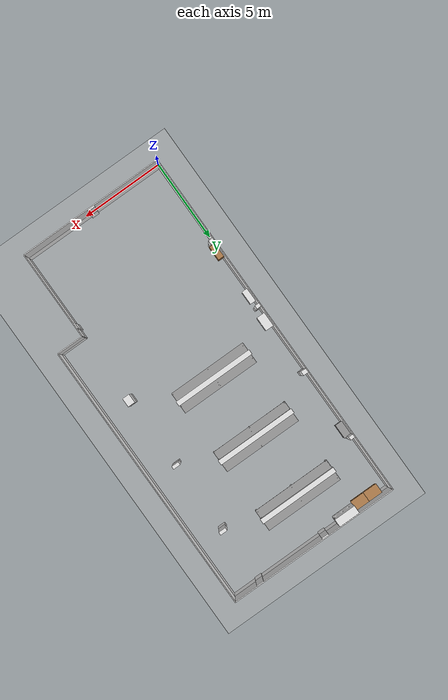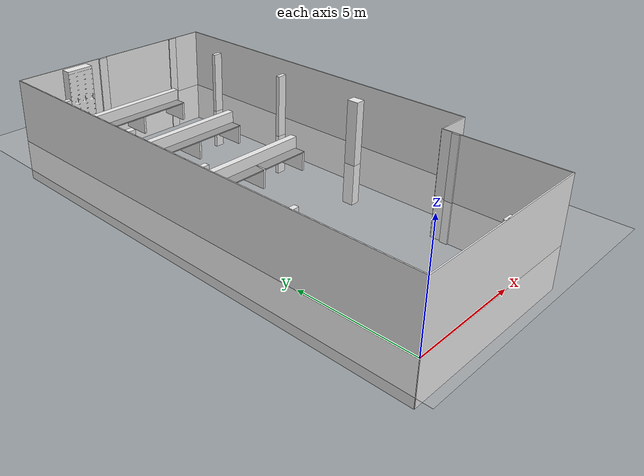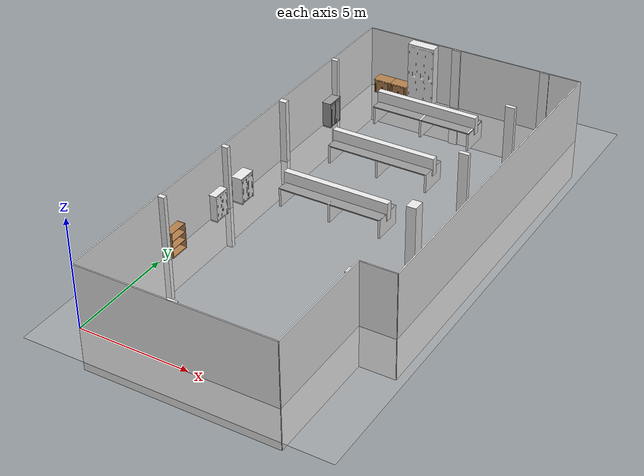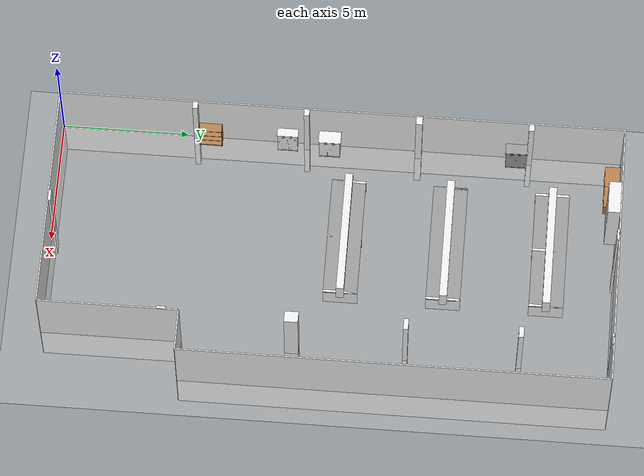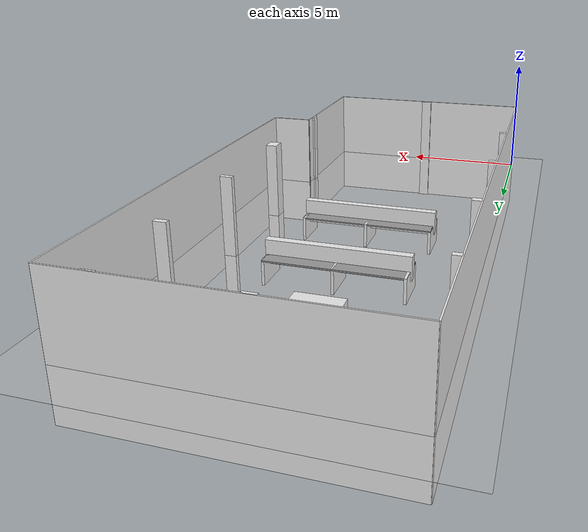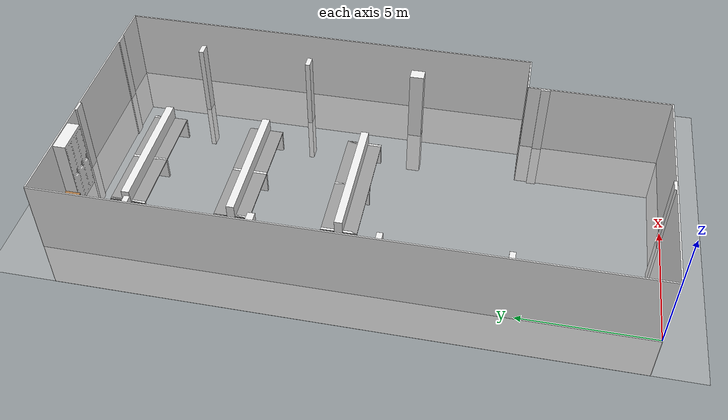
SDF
<?xml version="1.0"?>

<sdf version="1.5">
        <world name="default">
                <!-- physics engine {-->
                <physics name="default_physics" default="0" type="ode">
                        <gravity>0 0 -9.8066</gravity>
                        <ode>
                                <solver>
                                        <type>quick</type>
                                        <iters>10</iters>
                                        <sor>1.3</sor>
                                        <use_dynamic_moi_rescaling>0</use_dynamic_moi_rescaling>
                                </solver>
                                <constraints>
                                        <cfm>0</cfm>
                                        <erp>0.2</erp>
                                        <contact_max_correcting_vel>1000</contact_max_correcting_vel>
                                        <contact_surface_layer>0.001</contact_surface_layer>
                                </constraints>
                        </ode>
                        <max_step_size>0.004</max_step_size>
                        <real_time_factor>1</real_time_factor>
                        <real_time_update_rate>250</real_time_update_rate>
                        <magnetic_field>6.0e-06 2.3e-05 -4.2e-05</magnetic_field>
                </physics>

                <GUI name="default_gri" default="0" type="ode">
                        <grid> 45 1.0 0 0.0150</grid>
                </GUI>

                <!-- setup shadows {-->
                <scene>
                        <shadows>true</shadows>
                        <sky>
                                <clouds />
                        </sky>
                </scene>

                <!-- sun {-->

                <light name='sun' type='directional'>
                        <pose frame=''>0 0 10000 0.4 0.2 0</pose>
                        <diffuse>1 1 1 1</diffuse>
                        <specular>0.6 0.6 0.6 1</specular>
                        <direction>0.1 0.1 -0.9</direction>
                        <attenuation>
                                <range>20</range>
                                <constant>0.5</constant>
                                <linear>0.01</linear>
                                <quadratic>0.001</quadratic>
                        </attenuation>
                        <cast_shadows>1</cast_shadows>
                </light>
                <!-- A ground plane e robo-->
                <include>
                        <uri>model://ground_plane</uri>
                </include>

                <!-- todas as paredes -->
                <model name="wall">
                        <include>
                                <uri> model://wall-laser</uri>
                        </include>
                </model>

                <!-- Todas as colunas -->
                <model name="columns">
                        <include>
                                <uri> model://columns-laser</uri>
                        </include>
                </model>

                <!-- Todas as bancadas -->
                <model name="labBenchs">
                        <include>
                                <uri> model://labBench-laser</uri>
                        </include>
                </model>

                <!-- porta -->

                <!-- QR code -->

                <!--Armarios-->
                <model name="obj1">
                        <include>
                                <uri> model://bookshelf</uri>
                                <pose> 0 5.927 0 0 0 1.5707 </pose>
                        </include>
                </model>

                <model name="obj2">
                        <include>
                                <uri> model://cupboards</uri>

                        </include>
                </model>

        </world>
</sdf>

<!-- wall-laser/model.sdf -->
<sdf version="1.5">
    <model name="walls">
        <static>true</static>

        <link name="wall_900_hori">
            <pose>4.5 0 0.5 0 0 1.5707</pose>
            <static>true</static>
            <inertial>
                <mass>1.0</mass>
                <inertia>
                    <!-- inertias are tricky to compute -->
                    <ixx>1</ixx> <!-- for a box: ixx = 0.083 * mass * (y*y + z*z) -->
                    <ixy>0</ixy> <!-- for a box: ixy = 0 -->
                    <ixz>0</ixz> <!-- for a box: ixz = 0 -->
                    <iyy>1</iyy> <!-- for a box: iyy = 0.083 * mass * (x*x + z*z) -->
                    <iyz>0</iyz> <!-- for a box: iyz = 0 -->
                    <izz>1</izz> <!-- for a box: izz = 0.083 * mass * (x*x + y*y) -->
                </inertia>
            </inertial>
            <collision name="collision">
                <geometry>
                    <box>
                        <size>0.05 9 5</size>
                    </box>
                </geometry>
            </collision>
            <visual name="visual">
                <geometry>
                    <box>
                        <size>0.05 9 5</size>
                    </box>
                </geometry>
                <material>
                    <script>
                        <uri>file://usr/share/gazebo-11/media/materials/scripts/gazebo.material</uri>
                        <name>Gazebo/White</name>
                    </script>
                </material>
            </visual>
        </link>

        <link name="wall_550_verti">
            <pose>9 2.75 0.5 0 0 0</pose>
            <static>true</static>
            <inertial>
                <mass>1.0</mass>
                <inertia>
                    <!-- inertias are tricky to compute -->
                    <ixx>1</ixx> <!-- for a box: ixx = 0.083 * mass * (y*y + z*z) -->
                    <ixy>0</ixy> <!-- for a box: ixy = 0 -->
                    <ixz>0</ixz> <!-- for a box: ixz = 0 -->
                    <iyy>1</iyy> <!-- for a box: iyy = 0.083 * mass * (x*x + z*z) -->
                    <iyz>0</iyz> <!-- for a box: iyz = 0 -->
                    <izz>1</izz> <!-- for a box: izz = 0.083 * mass * (x*x + y*y) -->
                </inertia>
            </inertial>
            <collision name="collision">
                <geometry>
                    <box>
                        <size>0.05 5.5 5</size>
                    </box>
                </geometry>
            </collision>
            <visual name="visual">
                <geometry>
                    <box>
                        <size>0.05 5.5 5</size>
                    </box>
                </geometry>
                <material>
                    <script>
                        <uri>file://usr/share/gazebo-11/media/materials/scripts/gazebo.material</uri>
                        <name>Gazebo/White</name>
                    </script>
                </material>
            </visual>
        </link>

        <link name="wall_164_hori">
            <pose>9.8225 5.5 0.5 0 0 1.5707</pose>
            <static>true</static>
            <inertial>
                <mass>1.0</mass>
                <inertia>
                    <!-- inertias are tricky to compute -->
                    <ixx>1</ixx> <!-- for a box: ixx = 0.083 * mass * (y*y + z*z) -->
                    <ixy>0</ixy> <!-- for a box: ixy = 0 -->
                    <ixz>0</ixz> <!-- for a box: ixz = 0 -->
                    <iyy>1</iyy> <!-- for a box: iyy = 0.083 * mass * (x*x + z*z) -->
                    <iyz>0</iyz> <!-- for a box: iyz = 0 -->
                    <izz>1</izz> <!-- for a box: izz = 0.083 * mass * (x*x + y*y) -->
                </inertia>
            </inertial>
            <collision name="collision">
                <geometry>
                    <box>
                        <size>0.05 1.645 5</size>
                    </box>
                </geometry>
            </collision>
            <visual name="visual">
                <geometry>
                    <box>
                        <size>0.05 1.645 5</size>
                    </box>
                </geometry>
                <material>
                    <script>
                        <uri>file://usr/share/gazebo-11/media/materials/scripts/gazebo.material</uri>
                        <name>Gazebo/White</name>
                    </script>
                </material>
            </visual>
        </link>

        <link name="wall_1678_verti">
            <pose>10.645 13.8925 0.5 0 0 0</pose>
            <static>true</static>
            <inertial>
                <mass>1.0</mass>
                <inertia>
                    <!-- inertias are tricky to compute -->
                    <ixx>1</ixx> <!-- for a box: ixx = 0.083 * mass * (y*y + z*z) -->
                    <ixy>0</ixy> <!-- for a box: ixy = 0 -->
                    <ixz>0</ixz> <!-- for a box: ixz = 0 -->
                    <iyy>1</iyy> <!-- for a box: iyy = 0.083 * mass * (x*x + z*z) -->
                    <iyz>0</iyz> <!-- for a box: iyz = 0 -->
                    <izz>1</izz> <!-- for a box: izz = 0.083 * mass * (x*x + y*y) -->
                </inertia>
            </inertial>
            <collision name="collision">
                <geometry>
                    <box>
                        <size>0.05 16.785 5</size>
                    </box>
                </geometry>
            </collision>
            <visual name="visual">
                <geometry>
                    <box>
                        <size>0.05 16.785 5</size>
                    </box>
                </geometry>
                <material>
                    <script>
                        <uri>file://usr/share/gazebo-11/media/materials/scripts/gazebo.material</uri>
                        <name>Gazebo/White</name>
                    </script>
                </material>
            </visual>
        </link>

        <link name="wall_1064_hori">
            <pose>5.3225 22.285 0.5 0 0 1.5707</pose>
            <static>true</static>
            <inertial>
                <mass>1.0</mass>
                <inertia>
                    <!-- inertias are tricky to compute -->
                    <ixx>1</ixx> <!-- for a box: ixx = 0.083 * mass * (y*y + z*z) -->
                    <ixy>0</ixy> <!-- for a box: ixy = 0 -->
                    <ixz>0</ixz> <!-- for a box: ixz = 0 -->
                    <iyy>1</iyy> <!-- for a box: iyy = 0.083 * mass * (x*x + z*z) -->
                    <iyz>0</iyz> <!-- for a box: iyz = 0 -->
                    <izz>1</izz> <!-- for a box: izz = 0.083 * mass * (x*x + y*y) -->
                </inertia>
            </inertial>
            <collision name="collision">
                <geometry>
                    <box>
                        <size>0.05 10.645 5</size>
                    </box>
                </geometry>
            </collision>
            <visual name="visual">
                <geometry>
                    <box>
                        <size>0.05 10.645 5</size>
                    </box>
                </geometry>
                <material>
                    <script>
                        <uri>file://usr/share/gazebo-11/media/materials/scripts/gazebo.material</uri>
                        <name>Gazebo/White</name>
                    </script>
                </material>
            </visual>
        </link>

        <link name="wall_2228_verti">
            <pose>0 11.1425 0.5 0 0 0</pose>
            <static>true</static>
            <inertial>
                <mass>1.0</mass>
                <inertia>
                    <!-- inertias are tricky to compute -->
                    <ixx>1</ixx> <!-- for a box: ixx = 0.083 * mass * (y*y + z*z) -->
                    <ixy>0</ixy> <!-- for a box: ixy = 0 -->
                    <ixz>0</ixz> <!-- for a box: ixz = 0 -->
                    <iyy>1</iyy> <!-- for a box: iyy = 0.083 * mass * (x*x + z*z) -->
                    <iyz>0</iyz> <!-- for a box: iyz = 0 -->
                    <izz>1</izz> <!-- for a box: izz = 0.083 * mass * (x*x + y*y) -->
                </inertia>
            </inertial>
            <collision name="collision">
                <geometry>
                    <box>
                        <size>0.05 22.285 5</size>
                    </box>
                </geometry>
            </collision>
            <visual name="visual">
                <geometry>
                    <box>
                        <size>0.05 22.285 5</size>
                    </box>
                </geometry>
                <material>
                    <script>
                        <uri>file://usr/share/gazebo-11/media/materials/scripts/gazebo.material</uri>
                        <name>Gazebo/White</name>
                    </script>
                </material>
            </visual>
        </link>

    </model>
</sdf>

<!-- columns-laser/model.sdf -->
<sdf version="1.5">
    <model name="columns">
        <static>true</static>

        <link name="column_1_hori">
            <pose>4.5 0.055 0.5 0 0 1.5707</pose>
            <static>true</static>
            <inertial>
                <mass>1.0</mass>
                <inertia>
                    <!-- inertias are tricky to compute -->
                    <ixx>1</ixx> <!-- for a box: ixx = 0.083 * mass * (y*y + z*z) -->
                    <ixy>0</ixy> <!-- for a box: ixy = 0 -->
                    <ixz>0</ixz> <!-- for a box: ixz = 0 -->
                    <iyy>1</iyy> <!-- for a box: iyy = 0.083 * mass * (x*x + z*z) -->
                    <iyz>0</iyz> <!-- for a box: iyz = 0 -->
                    <izz>1</izz> <!-- for a box: izz = 0.083 * mass * (x*x + y*y) -->
                </inertia>
            </inertial>
            <collision name="collision">
                <geometry>
                    <box>
                        <size>0.11 0.45 5</size>
                    </box>
                </geometry>
            </collision>
            <visual name="visual">
                <geometry>
                    <box>
                        <size>0.11 0.45 5</size>
                    </box>
                </geometry>
                <material>
                    <script>
                        <uri>file://usr/share/gazebo-11/media/materials/scripts/gazebo.material</uri>
                        <name>Gazebo/White</name>
                    </script>
                </material>
            </visual>
        </link>

        <link name="column_2_verti">
            <pose>8.95 4.82 0.5 0 0 0</pose> <!-- corrigir posicao y -->
            <static>true</static>
            <inertial>
                <mass>1.0</mass>
                <inertia>
                    <!-- inertias are tricky to compute -->
                    <ixx>1</ixx> <!-- for a box: ixx = 0.083 * mass * (y*y + z*z) -->
                    <ixy>0</ixy> <!-- for a box: ixy = 0 -->
                    <ixz>0</ixz> <!-- for a box: ixz = 0 -->
                    <iyy>1</iyy> <!-- for a box: iyy = 0.083 * mass * (x*x + z*z) -->
                    <iyz>0</iyz> <!-- for a box: iyz = 0 -->
                    <izz>1</izz> <!-- for a box: izz = 0.083 * mass * (x*x + y*y) -->
                </inertia>
            </inertial>
            <collision name="collision">
                <geometry>
                    <box>
                        <size>0.1 0.36 5</size>
                    </box>
                </geometry>
            </collision>
            <visual name="visual">
                <geometry>
                    <box>
                        <size>0.1 0.36 5</size>
                    </box>
                </geometry>
                <material>
                    <script>
                        <uri>file://usr/share/gazebo-11/media/materials/scripts/gazebo.material</uri>
                        <name>Gazebo/White</name>
                    </script>
                </material>
            </visual>
        </link>

        <link name="column_3_hori">
            <pose>8.9425 22.25 0.5 0 0 1.5707</pose>
            <static>true</static>
            <inertial>
                <mass>1.0</mass>
                <inertia>
                    <!-- inertias are tricky to compute -->
                    <ixx>1</ixx> <!-- for a box: ixx = 0.083 * mass * (y*y + z*z) -->
                    <ixy>0</ixy> <!-- for a box: ixy = 0 -->
                    <ixz>0</ixz> <!-- for a box: ixz = 0 -->
                    <iyy>1</iyy> <!-- for a box: iyy = 0.083 * mass * (x*x + z*z) -->
                    <iyz>0</iyz> <!-- for a box: iyz = 0 -->
                    <izz>1</izz> <!-- for a box: izz = 0.083 * mass * (x*x + y*y) -->
                </inertia>
            </inertial>
            <collision name="collision">
                <geometry>
                    <box>
                        <size>0.07 0.445 5</size>
                    </box>
                </geometry>
            </collision>
            <visual name="visual">
                <geometry>
                    <box>
                        <size>0.07 0.445 5</size>
                    </box>
                </geometry>
                <material>
                    <script>
                        <uri>file://usr/share/gazebo-11/media/materials/scripts/gazebo.material</uri>
                        <name>Gazebo/White</name>
                    </script>
                </material>
            </visual>
        </link>

        <link name="column_4_hori">
            <pose>4.5225 22.235 0.5 0 0 1.5707</pose>
            <static>true</static>
            <inertial>
                <mass>1.0</mass>
                <inertia>
                    <!-- inertias are tricky to compute -->
                    <ixx>1</ixx> <!-- for a box: ixx = 0.083 * mass * (y*y + z*z) -->
                    <ixy>0</ixy> <!-- for a box: ixy = 0 -->
                    <ixz>0</ixz> <!-- for a box: ixz = 0 -->
                    <iyy>1</iyy> <!-- for a box: iyy = 0.083 * mass * (x*x + z*z) -->
                    <iyz>0</iyz> <!-- for a box: iyz = 0 -->
                    <izz>1</izz> <!-- for a box: izz = 0.083 * mass * (x*x + y*y) -->
                </inertia>
            </inertial>
            <collision name="collision">
                <geometry>
                    <box>
                        <size>0.1 0.435 5</size>
                    </box>
                </geometry>
            </collision>
            <visual name="visual">
                <geometry>
                    <box>
                        <size>0.1 0.435 5</size>
                    </box>
                </geometry>
                <material>
                    <script>
                        <uri>file://usr/share/gazebo-11/media/materials/scripts/gazebo.material</uri>
                        <name>Gazebo/White</name>
                    </script>
                </material>
            </visual>
        </link>

        <link name="column_8_verti">
            <pose>0.15 5.3645 0.5 0 0 0</pose>
            <static>true</static>
            <inertial>
                <mass>1.0</mass>
                <inertia>
                    <!-- inertias are tricky to compute -->
                    <ixx>1</ixx> <!-- for a box: ixx = 0.083 * mass * (y*y + z*z) -->
                    <ixy>0</ixy> <!-- for a box: ixy = 0 -->
                    <ixz>0</ixz> <!-- for a box: ixz = 0 -->
                    <iyy>1</iyy> <!-- for a box: iyy = 0.083 * mass * (x*x + z*z) -->
                    <iyz>0</iyz> <!-- for a box: iyz = 0 -->
                    <izz>1</izz> <!-- for a box: izz = 0.083 * mass * (x*x + y*y) -->
                </inertia>
            </inertial>
            <collision name="collision">
                <geometry>
                    <box>
                        <size>0.3 0.205 5</size>
                    </box>
                </geometry>
            </collision>
            <visual name="visual">
                <geometry>
                    <box>
                        <size>0.3 0.205 5</size>
                    </box>
                </geometry>
                <material>
                    <script>
                        <uri>file://usr/share/gazebo-11/media/materials/scripts/gazebo.material</uri>
                        <name>Gazebo/White</name>
                    </script>
                </material>
            </visual>
        </link>

        <link name="column_7_verti">
            <pose>0.15 9.764 0.5 0 0 0</pose>
            <static>true</static>
            <inertial>
                <mass>1.0</mass>
                <inertia>
                    <!-- inertias are tricky to compute -->
                    <ixx>1</ixx> <!-- for a box: ixx = 0.083 * mass * (y*y + z*z) -->
                    <ixy>0</ixy> <!-- for a box: ixy = 0 -->
                    <ixz>0</ixz> <!-- for a box: ixz = 0 -->
                    <iyy>1</iyy> <!-- for a box: iyy = 0.083 * mass * (x*x + z*z) -->
                    <iyz>0</iyz> <!-- for a box: iyz = 0 -->
                    <izz>1</izz> <!-- for a box: izz = 0.083 * mass * (x*x + y*y) -->
                </inertia>
            </inertial>
            <collision name="collision">
                <geometry>
                    <box>
                        <size>0.3 0.21 5</size>
                    </box>
                </geometry>
            </collision>
            <visual name="visual">
                <geometry>
                    <box>
                        <size>0.3 0.21 5</size>
                    </box>
                </geometry>
                <material>
                    <script>
                        <uri>file://usr/share/gazebo-11/media/materials/scripts/gazebo.material</uri>
                        <name>Gazebo/White</name>
                    </script>
                </material>
            </visual>
        </link>

        <link name="column_6_verti">
            <pose>0.175 14.202 0.5 0 0 0</pose>
            <static>true</static>
            <inertial>
                <mass>1.0</mass>
                <inertia>
                    <!-- inertias are tricky to compute -->
                    <ixx>1</ixx> <!-- for a box: ixx = 0.083 * mass * (y*y + z*z) -->
                    <ixy>0</ixy> <!-- for a box: ixy = 0 -->
                    <ixz>0</ixz> <!-- for a box: ixz = 0 -->
                    <iyy>1</iyy> <!-- for a box: iyy = 0.083 * mass * (x*x + z*z) -->
                    <iyz>0</iyz> <!-- for a box: iyz = 0 -->
                    <izz>1</izz> <!-- for a box: izz = 0.083 * mass * (x*x + y*y) -->
                </inertia>
            </inertial>
            <collision name="collision">
                <geometry>
                    <box>
                        <size>0.35 0.26 5</size>
                    </box>
                </geometry>
            </collision>
            <visual name="visual">
                <geometry>
                    <box>
                        <size>0.35 0.26 5</size>
                    </box>
                </geometry>
                <material>
                    <script>
                        <uri>file://usr/share/gazebo-11/media/materials/scripts/gazebo.material</uri>
                        <name>Gazebo/White</name>
                    </script>
                </material>
            </visual>
        </link>

        <link name="column_5_verti">
            <pose>0.1525 18.6245 0.5 0 0 0</pose>
            <static>true</static>
            <inertial>
                <mass>1.0</mass>
                <inertia>
                    <!-- inertias are tricky to compute -->
                    <ixx>1</ixx> <!-- for a box: ixx = 0.083 * mass * (y*y + z*z) -->
                    <ixy>0</ixy> <!-- for a box: ixy = 0 -->
                    <ixz>0</ixz> <!-- for a box: ixz = 0 -->
                    <iyy>1</iyy> <!-- for a box: iyy = 0.083 * mass * (x*x + z*z) -->
                    <iyz>0</iyz> <!-- for a box: iyz = 0 -->
                    <izz>1</izz> <!-- for a box: izz = 0.083 * mass * (x*x + y*y) -->
                </inertia>
            </inertial>
            <collision name="collision">
                <geometry>
                    <box>
                        <size>0.305 0.205 5</size>
                    </box>
                </geometry>
            </collision>
            <visual name="visual">
                <geometry>
                    <box>
                        <size>0.305 0.205 5</size>
                    </box>
                </geometry>
                <material>
                    <script>
                        <uri>file://usr/share/gazebo-11/media/materials/scripts/gazebo.material</uri>
                        <name>Gazebo/White</name>
                    </script>
                </material>
            </visual>
        </link>

        <link name="obj8">
            <pose>8.936 18.72 0.5 0 0 0</pose>
            <static>true</static>
            <inertial>
                <mass>1.0</mass>
                <inertia>
                    <!-- inertias are tricky to compute -->
                    <ixx>1</ixx> <!-- for a box: ixx = 0.083 * mass * (y*y + z*z) -->
                    <ixy>0</ixy> <!-- for a box: ixy = 0 -->
                    <ixz>0</ixz> <!-- for a box: ixz = 0 -->
                    <iyy>1</iyy> <!-- for a box: iyy = 0.083 * mass * (x*x + z*z) -->
                    <iyz>0</iyz> <!-- for a box: iyz = 0 -->
                    <izz>1</izz> <!-- for a box: izz = 0.083 * mass * (x*x + y*y) -->
                </inertia>
            </inertial>
            <collision name="collision">
                <geometry>
                    <box>
                        <size>0.45 0.19 5</size>
                    </box>
                </geometry>
            </collision>
            <visual name="visual">
                <geometry>
                    <box>
                        <size>0.45 0.19 5</size>
                    </box>
                </geometry>
                <material>
                    <script>
                        <uri>file://usr/share/gazebo-11/media/materials/scripts/gazebo.material</uri>
                        <name>Gazebo/White</name>
                    </script>
                </material>
            </visual>
        </link>

        <link name="obj9">
            <pose>8.936 14.275 0.5 0 0 0</pose>
            <static>true</static>
            <inertial>
                <mass>1.0</mass>
                <inertia>
                    <!-- inertias are tricky to compute -->
                    <ixx>1</ixx> <!-- for a box: ixx = 0.083 * mass * (y*y + z*z) -->
                    <ixy>0</ixy> <!-- for a box: ixy = 0 -->
                    <ixz>0</ixz> <!-- for a box: ixz = 0 -->
                    <iyy>1</iyy> <!-- for a box: iyy = 0.083 * mass * (x*x + z*z) -->
                    <iyz>0</iyz> <!-- for a box: iyz = 0 -->
                    <izz>1</izz> <!-- for a box: izz = 0.083 * mass * (x*x + y*y) -->
                </inertia>
            </inertial>
            <collision name="collision">
                <geometry>
                    <box>
                        <size>0.45 0.19 5</size>
                    </box>
                </geometry>
            </collision>
            <visual name="visual">
                <geometry>
                    <box>
                        <size>0.45 0.19 5</size>
                    </box>
                </geometry>
                <material>
                    <script>
                        <uri>file://usr/share/gazebo-11/media/materials/scripts/gazebo.material</uri>
                        <name>Gazebo/White</name>
                    </script>
                </material>
            </visual>
        </link>

        <link name="obj10">
            <pose>8.9695 9.8545 0.5 0 0 0</pose>
            <static>true</static>
            <inertial>
                <mass>1.0</mass>
                <inertia>
                    <!-- inertias are tricky to compute -->
                    <ixx>1</ixx> <!-- for a box: ixx = 0.083 * mass * (y*y + z*z) -->
                    <ixy>0</ixy> <!-- for a box: ixy = 0 -->
                    <ixz>0</ixz> <!-- for a box: ixz = 0 -->
                    <iyy>1</iyy> <!-- for a box: iyy = 0.083 * mass * (x*x + z*z) -->
                    <iyz>0</iyz> <!-- for a box: iyz = 0 -->
                    <izz>1</izz> <!-- for a box: izz = 0.083 * mass * (x*x + y*y) -->
                </inertia>
            </inertial>
            <collision name="collision">
                <geometry>
                    <box>
                        <size>0.445 0.545 5</size>
                    </box>
                </geometry>
            </collision>
            <visual name="visual">
                <geometry>
                    <box>
                        <size>0.445 0.545 5</size>
                    </box>
                </geometry>
                <material>
                    <script>
                        <uri>file://usr/share/gazebo-11/media/materials/scripts/gazebo.material</uri>
                        <name>Gazebo/White</name>
                    </script>
                </material>
            </visual>
        </link>
    </model>
</sdf>

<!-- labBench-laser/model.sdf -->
<sdf version="1.5">
    <model name="benchs">
        <static>true</static>

        <!-- obj12.1 -->
        <link name="white_hori_1">
            <pose>4.423 19.633 1 0 0 0</pose>
            <static>true</static>
            <inertial>
                <mass>1.0</mass>
                <inertia>
                    <!-- inertias are tricky to compute -->
                    <ixx>1</ixx> <!-- for a box: ixx = 0.083 * mass * (y*y + z*z) -->
                    <ixy>0</ixy> <!-- for a box: ixy = 0 -->
                    <ixz>0</ixz> <!-- for a box: ixz = 0 -->
                    <iyy>1</iyy> <!-- for a box: iyy = 0.083 * mass * (x*x + z*z) -->
                    <iyz>0</iyz> <!-- for a box: iyz = 0 -->
                    <izz>1</izz> <!-- for a box: izz = 0.083 * mass * (x*x + y*y) -->
                </inertia>
            </inertial>
            <collision name="collision">
                <geometry>
                    <box>
                        <size>5 0.3 0.85</size>
                    </box>
                </geometry>
            </collision>
            <visual name="visual">
                <geometry>
                    <box>
                        <size>5 0.3 0.85</size>
                    </box>
                </geometry>
                <material>
                    <script>
                        <uri>file://usr/share/gazebo-11/media/materials/scripts/gazebo.material</uri>
                        <name>Gazebo/White</name>
                    </script>
                </material>
            </visual>
        </link>

        <link name="grani_hori_1">
            <pose>4.423 19.633 0.875 0 0 0</pose>
            <static>true</static>
            <inertial>
                <mass>1.0</mass>
                <inertia>
                    <!-- inertias are tricky to compute -->
                    <ixx>1</ixx> <!-- for a box: ixx = 0.083 * mass * (y*y + z*z) -->
                    <ixy>0</ixy> <!-- for a box: ixy = 0 -->
                    <ixz>0</ixz> <!-- for a box: ixz = 0 -->
                    <iyy>1</iyy> <!-- for a box: iyy = 0.083 * mass * (x*x + z*z) -->
                    <iyz>0</iyz> <!-- for a box: iyz = 0 -->
                    <izz>1</izz> <!-- for a box: izz = 0.083 * mass * (x*x + y*y) -->
                </inertia>
            </inertial>
            <collision name="collision">
                <geometry>
                    <box>
                        <size>4.9 1.35 0.05</size>
                    </box>
                </geometry>
            </collision>
            <visual name="visual">
                <geometry>
                    <box>
                        <size>4.9 1.35 0.05</size>
                    </box>
                </geometry>
                <material>
                    <script>
                        <uri>file://usr/share/gazebo-11/media/materials/scripts/gazebo.material</uri>
                        <name>Gazebo/Grey</name>
                    </script>
                </material>
            </visual>
        </link>

        <link name="white_verti_1">
            <pose>2.023 19.633 0.45 0 0 0</pose>
            <static>true</static>
            <inertial>
                <mass>1.0</mass>
                <inertia>
                    <!-- inertias are tricky to compute -->
                    <ixx>1</ixx> <!-- for a box: ixx = 0.083 * mass * (y*y + z*z) -->
                    <ixy>0</ixy> <!-- for a box: ixy = 0 -->
                    <ixz>0</ixz> <!-- for a box: ixz = 0 -->
                    <iyy>1</iyy> <!-- for a box: iyy = 0.083 * mass * (x*x + z*z) -->
                    <iyz>0</iyz> <!-- for a box: iyz = 0 -->
                    <izz>1</izz> <!-- for a box: izz = 0.083 * mass * (x*x + y*y) -->
                </inertia>
            </inertial>
            <collision name="collision">
                <geometry>
                    <box>
                        <size>0.1 1.35 0.9</size>
                    </box>
                </geometry>
            </collision>
            <visual name="visual">
                <geometry>
                    <box>
                        <size>0.1 1.35 0.9</size>
                    </box>
                </geometry>
                <material>
                    <script>
                        <uri>file://usr/share/gazebo-11/media/materials/scripts/gazebo.material</uri>
                        <name>Gazebo/White</name>
                    </script>
                </material>
            </visual>
        </link>

        <link name="white_verti_2">
            <pose>4.423 19.633 0.45 0 0 0</pose>
            <static>true</static>
            <inertial>
                <mass>1.0</mass>
                <inertia>
                    <!-- inertias are tricky to compute -->
                    <ixx>1</ixx> <!-- for a box: ixx = 0.083 * mass * (y*y + z*z) -->
                    <ixy>0</ixy> <!-- for a box: ixy = 0 -->
                    <ixz>0</ixz> <!-- for a box: ixz = 0 -->
                    <iyy>1</iyy> <!-- for a box: iyy = 0.083 * mass * (x*x + z*z) -->
                    <iyz>0</iyz> <!-- for a box: iyz = 0 -->
                    <izz>1</izz> <!-- for a box: izz = 0.083 * mass * (x*x + y*y) -->
                </inertia>
            </inertial>
            <collision name="collision">
                <geometry>
                    <box>
                        <size>0.1 1.35 0.9</size>
                    </box>
                </geometry>
            </collision>
            <visual name="visual">
                <geometry>
                    <box>
                        <size>0.1 1.35 0.9</size>
                    </box>
                </geometry>
                <material>
                    <script>
                        <uri>file://usr/share/gazebo-11/media/materials/scripts/gazebo.material</uri>
                        <name>Gazebo/White</name>
                    </script>
                </material>
            </visual>
        </link>

        <link name="white_verti_3">
            <pose>6.823 19.633 0.45 0 0 0</pose>
            <static>true</static>
            <inertial>
                <mass>1.0</mass>
                <inertia>
                    <!-- inertias are tricky to compute -->
                    <ixx>1</ixx> <!-- for a box: ixx = 0.083 * mass * (y*y + z*z) -->
                    <ixy>0</ixy> <!-- for a box: ixy = 0 -->
                    <ixz>0</ixz> <!-- for a box: ixz = 0 -->
                    <iyy>1</iyy> <!-- for a box: iyy = 0.083 * mass * (x*x + z*z) -->
                    <iyz>0</iyz> <!-- for a box: iyz = 0 -->
                    <izz>1</izz> <!-- for a box: izz = 0.083 * mass * (x*x + y*y) -->
                </inertia>
            </inertial>
            <collision name="collision">
                <geometry>
                    <box>
                        <size>0.1 1.35 0.9</size>
                    </box>
                </geometry>
            </collision>
            <visual name="visual">
                <geometry>
                    <box>
                        <size>0.1 1.35 0.9</size>
                    </box>
                </geometry>
                <material>
                    <script>
                        <uri>file://usr/share/gazebo-11/media/materials/scripts/gazebo.material</uri>
                        <name>Gazebo/White</name>
                    </script>
                </material>
            </visual>
        </link>

        <!-- obj12.2 -->
        <link name="white_hori_2">
            <pose>4.423 15.603 1 0 0 0</pose>
            <static>true</static>
            <inertial>
                <mass>1.0</mass>
                <inertia>
                    <!-- inertias are tricky to compute -->
                    <ixx>1</ixx> <!-- for a box: ixx = 0.083 * mass * (y*y + z*z) -->
                    <ixy>0</ixy> <!-- for a box: ixy = 0 -->
                    <ixz>0</ixz> <!-- for a box: ixz = 0 -->
                    <iyy>1</iyy> <!-- for a box: iyy = 0.083 * mass * (x*x + z*z) -->
                    <iyz>0</iyz> <!-- for a box: iyz = 0 -->
                    <izz>1</izz> <!-- for a box: izz = 0.083 * mass * (x*x + y*y) -->
                </inertia>
            </inertial>
            <collision name="collision">
                <geometry>
                    <box>
                        <size>5 0.3 0.85</size>
                    </box>
                </geometry>
            </collision>
            <visual name="visual">
                <geometry>
                    <box>
                        <size>5 0.3 0.85</size>
                    </box>
                </geometry>
                <material>
                    <script>
                        <uri>file://usr/share/gazebo-11/media/materials/scripts/gazebo.material</uri>
                        <name>Gazebo/White</name>
                    </script>
                </material>
            </visual>
        </link>

        <link name="grani_hori_2">
            <pose>4.423 15.603 0.875 0 0 0</pose>
            <static>true</static>
            <inertial>
                <mass>1.0</mass>
                <inertia>
                    <!-- inertias are tricky to compute -->
                    <ixx>1</ixx> <!-- for a box: ixx = 0.083 * mass * (y*y + z*z) -->
                    <ixy>0</ixy> <!-- for a box: ixy = 0 -->
                    <ixz>0</ixz> <!-- for a box: ixz = 0 -->
                    <iyy>1</iyy> <!-- for a box: iyy = 0.083 * mass * (x*x + z*z) -->
                    <iyz>0</iyz> <!-- for a box: iyz = 0 -->
                    <izz>1</izz> <!-- for a box: izz = 0.083 * mass * (x*x + y*y) -->
                </inertia>
            </inertial>
            <collision name="collision">
                <geometry>
                    <box>
                        <size>4.9 1.35 0.05</size>
                    </box>
                </geometry>
            </collision>
            <visual name="visual">
                <geometry>
                    <box>
                        <size>4.9 1.35 0.05</size>
                    </box>
                </geometry>
                <material>
                    <script>
                        <uri>file://usr/share/gazebo-11/media/materials/scripts/gazebo.material</uri>
                        <name>Gazebo/Grey</name>
                    </script>
                </material>
            </visual>
        </link>

        <link name="white_verti_4">
            <pose>2.023 15.603 0.45 0 0 0</pose>
            <static>true</static>
            <inertial>
                <mass>1.0</mass>
                <inertia>
                    <!-- inertias are tricky to compute -->
                    <ixx>1</ixx> <!-- for a box: ixx = 0.083 * mass * (y*y + z*z) -->
                    <ixy>0</ixy> <!-- for a box: ixy = 0 -->
                    <ixz>0</ixz> <!-- for a box: ixz = 0 -->
                    <iyy>1</iyy> <!-- for a box: iyy = 0.083 * mass * (x*x + z*z) -->
                    <iyz>0</iyz> <!-- for a box: iyz = 0 -->
                    <izz>1</izz> <!-- for a box: izz = 0.083 * mass * (x*x + y*y) -->
                </inertia>
            </inertial>
            <collision name="collision">
                <geometry>
                    <box>
                        <size>0.1 1.35 0.9</size>
                    </box>
                </geometry>
            </collision>
            <visual name="visual">
                <geometry>
                    <box>
                        <size>0.1 1.35 0.9</size>
                    </box>
                </geometry>
                <material>
                    <script>
                        <uri>file://usr/share/gazebo-11/media/materials/scripts/gazebo.material</uri>
                        <name>Gazebo/White</name>
                    </script>
                </material>
            </visual>
        </link>

        <link name="white_verti_5">
            <pose>4.423 15.603 0.45 0 0 0</pose>
            <static>true</static>
            <inertial>
                <mass>1.0</mass>
                <inertia>
                    <!-- inertias are tricky to compute -->
                    <ixx>1</ixx> <!-- for a box: ixx = 0.083 * mass * (y*y + z*z) -->
                    <ixy>0</ixy> <!-- for a box: ixy = 0 -->
                    <ixz>0</ixz> <!-- for a box: ixz = 0 -->
                    <iyy>1</iyy> <!-- for a box: iyy = 0.083 * mass * (x*x + z*z) -->
                    <iyz>0</iyz> <!-- for a box: iyz = 0 -->
                    <izz>1</izz> <!-- for a box: izz = 0.083 * mass * (x*x + y*y) -->
                </inertia>
            </inertial>
            <collision name="collision">
                <geometry>
                    <box>
                        <size>0.1 1.35 0.9</size>
                    </box>
                </geometry>
            </collision>
            <visual name="visual">
                <geometry>
                    <box>
                        <size>0.1 1.35 0.9</size>
                    </box>
                </geometry>
                <material>
                    <script>
                        <uri>file://usr/share/gazebo-11/media/materials/scripts/gazebo.material</uri>
                        <name>Gazebo/White</name>
                    </script>
                </material>
            </visual>
        </link>

        <link name="white_verti_6">
            <pose>6.823 15.603 0.45 0 0 0</pose>
            <static>true</static>
            <inertial>
                <mass>1.0</mass>
                <inertia>
                    <!-- inertias are tricky to compute -->
                    <ixx>1</ixx> <!-- for a box: ixx = 0.083 * mass * (y*y + z*z) -->
                    <ixy>0</ixy> <!-- for a box: ixy = 0 -->
                    <ixz>0</ixz> <!-- for a box: ixz = 0 -->
                    <iyy>1</iyy> <!-- for a box: iyy = 0.083 * mass * (x*x + z*z) -->
                    <iyz>0</iyz> <!-- for a box: iyz = 0 -->
                    <izz>1</izz> <!-- for a box: izz = 0.083 * mass * (x*x + y*y) -->
                </inertia>
            </inertial>
            <collision name="collision">
                <geometry>
                    <box>
                        <size>0.1 1.35 0.9</size>
                    </box>
                </geometry>
            </collision>
            <visual name="visual">
                <geometry>
                    <box>
                        <size>0.1 1.35 0.9</size>
                    </box>
                </geometry>
                <material>
                    <script>
                        <uri>file://usr/share/gazebo-11/media/materials/scripts/gazebo.material</uri>
                        <name>Gazebo/White</name>
                    </script>
                </material>
            </visual>
        </link>

        <!-- obj12.3 -->
        <link name="white_hori_3">
            <pose>4.423 11.573 1 0 0 0</pose>
            <static>true</static>
            <inertial>
                <mass>1.0</mass>
                <inertia>
                    <!-- inertias are tricky to compute -->
                    <ixx>1</ixx> <!-- for a box: ixx = 0.083 * mass * (y*y + z*z) -->
                    <ixy>0</ixy> <!-- for a box: ixy = 0 -->
                    <ixz>0</ixz> <!-- for a box: ixz = 0 -->
                    <iyy>1</iyy> <!-- for a box: iyy = 0.083 * mass * (x*x + z*z) -->
                    <iyz>0</iyz> <!-- for a box: iyz = 0 -->
                    <izz>1</izz> <!-- for a box: izz = 0.083 * mass * (x*x + y*y) -->
                </inertia>
            </inertial>
            <collision name="collision">
                <geometry>
                    <box>
                        <size>5 0.3 0.85</size>
                    </box>
                </geometry>
            </collision>
            <visual name="visual">
                <geometry>
                    <box>
                        <size>5 0.3 0.85</size>
                    </box>
                </geometry>
                <material>
                    <script>
                        <uri>file://usr/share/gazebo-11/media/materials/scripts/gazebo.material</uri>
                        <name>Gazebo/White</name>
                    </script>
                </material>
            </visual>
        </link>

        <link name="grani_hori_3">
            <pose>4.423 11.573 0.875 0 0 0</pose>
            <static>true</static>
            <inertial>
                <mass>1.0</mass>
                <inertia>
                    <!-- inertias are tricky to compute -->
                    <ixx>1</ixx> <!-- for a box: ixx = 0.083 * mass * (y*y + z*z) -->
                    <ixy>0</ixy> <!-- for a box: ixy = 0 -->
                    <ixz>0</ixz> <!-- for a box: ixz = 0 -->
                    <iyy>1</iyy> <!-- for a box: iyy = 0.083 * mass * (x*x + z*z) -->
                    <iyz>0</iyz> <!-- for a box: iyz = 0 -->
                    <izz>1</izz> <!-- for a box: izz = 0.083 * mass * (x*x + y*y) -->
                </inertia>
            </inertial>
            <collision name="collision">
                <geometry>
                    <box>
                        <size>4.9 1.35 0.05</size>
                    </box>
                </geometry>
            </collision>
            <visual name="visual">
                <geometry>
                    <box>
                        <size>4.9 1.35 0.05</size>
                    </box>
                </geometry>
                <material>
                    <script>
                        <uri>file://usr/share/gazebo-11/media/materials/scripts/gazebo.material</uri>
                        <name>Gazebo/Grey</name>
                    </script>
                </material>
            </visual>
        </link>

        <link name="white_verti_7">
            <pose>2.023 11.573 0.45 0 0 0</pose>
            <static>true</static>
            <inertial>
                <mass>1.0</mass>
                <inertia>
                    <!-- inertias are tricky to compute -->
                    <ixx>1</ixx> <!-- for a box: ixx = 0.083 * mass * (y*y + z*z) -->
                    <ixy>0</ixy> <!-- for a box: ixy = 0 -->
                    <ixz>0</ixz> <!-- for a box: ixz = 0 -->
                    <iyy>1</iyy> <!-- for a box: iyy = 0.083 * mass * (x*x + z*z) -->
                    <iyz>0</iyz> <!-- for a box: iyz = 0 -->
                    <izz>1</izz> <!-- for a box: izz = 0.083 * mass * (x*x + y*y) -->
                </inertia>
            </inertial>
            <collision name="collision">
                <geometry>
                    <box>
                        <size>0.1 1.35 0.9</size>
                    </box>
                </geometry>
            </collision>
            <visual name="visual">
                <geometry>
                    <box>
                        <size>0.1 1.35 0.9</size>
                    </box>
                </geometry>
                <material>
                    <script>
                        <uri>file://usr/share/gazebo-11/media/materials/scripts/gazebo.material</uri>
                        <name>Gazebo/White</name>
                    </script>
                </material>
            </visual>
        </link>

        <link name="white_verti_8">
            <pose>4.423 11.573 0.45 0 0 0</pose>
            <static>true</static>
            <inertial>
                <mass>1.0</mass>
                <inertia>
                    <!-- inertias are tricky to compute -->
                    <ixx>1</ixx> <!-- for a box: ixx = 0.083 * mass * (y*y + z*z) -->
                    <ixy>0</ixy> <!-- for a box: ixy = 0 -->
                    <ixz>0</ixz> <!-- for a box: ixz = 0 -->
                    <iyy>1</iyy> <!-- for a box: iyy = 0.083 * mass * (x*x + z*z) -->
                    <iyz>0</iyz> <!-- for a box: iyz = 0 -->
                    <izz>1</izz> <!-- for a box: izz = 0.083 * mass * (x*x + y*y) -->
                </inertia>
            </inertial>
            <collision name="collision">
                <geometry>
                    <box>
                        <size>0.1 1.35 0.9</size>
                    </box>
                </geometry>
            </collision>
            <visual name="visual">
                <geometry>
                    <box>
                        <size>0.1 1.35 0.9</size>
                    </box>
                </geometry>
                <material>
                    <script>
                        <uri>file://usr/share/gazebo-11/media/materials/scripts/gazebo.material</uri>
                        <name>Gazebo/White</name>
                    </script>
                </material>
            </visual>
        </link>

        <link name="white_verti_9">
            <pose>6.823 11.573 0.45 0 0 0</pose>
            <static>true</static>
            <inertial>
                <mass>1.0</mass>
                <inertia>
                    <!-- inertias are tricky to compute -->
                    <ixx>1</ixx> <!-- for a box: ixx = 0.083 * mass * (y*y + z*z) -->
                    <ixy>0</ixy> <!-- for a box: ixy = 0 -->
                    <ixz>0</ixz> <!-- for a box: ixz = 0 -->
                    <iyy>1</iyy> <!-- for a box: iyy = 0.083 * mass * (x*x + z*z) -->
                    <iyz>0</iyz> <!-- for a box: iyz = 0 -->
                    <izz>1</izz> <!-- for a box: izz = 0.083 * mass * (x*x + y*y) -->
                </inertia>
            </inertial>
            <collision name="collision">
                <geometry>
                    <box>
                        <size>0.1 1.35 0.9</size>
                    </box>
                </geometry>
            </collision>
            <visual name="visual">
                <geometry>
                    <box>
                        <size>0.1 1.35 0.9</size>
                    </box>
                </geometry>
                <material>
                    <script>
                        <uri>file://usr/share/gazebo-11/media/materials/scripts/gazebo.material</uri>
                        <name>Gazebo/White</name>
                    </script>
                </material>
            </visual>
        </link>

    </model>
</sdf>

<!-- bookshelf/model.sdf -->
<sdf version="1.5">
  <model name="bookshelf">
    <static>true</static>
    <link name="link">
      <inertial>
        <mass>1.0</mass>
      </inertial>
      <collision name="back">
        <pose>0 0.005 0.6 0 0 0</pose>
        <geometry>
          <box>
            <size>0.9 0.01 1.2</size>
          </box>
        </geometry>
      </collision>
      <visual name="visual1">
        <pose>0 0.005 0.6 0 0 0</pose>
        <geometry>
          <box>
            <size>0.9 0.01 1.2</size>
          </box>
        </geometry>
        <material>
          <script>
            <uri>file://media/materials/scripts/gazebo.material</uri>
            <name>Gazebo/WoodPallet</name>
          </script>
        </material>
      </visual>
      <collision name="left_side">
        <pose>0.45 -0.195 0.6 0 0 0</pose>
        <geometry>
          <box>
            <size>0.02 0.4 1.2</size>
          </box>
        </geometry>
      </collision>
      <visual name="visual2">
        <pose>0.45 -0.195 0.6 0 0 0</pose>
        <geometry>
          <box>
            <size>0.02 0.4 1.2</size>
          </box>
        </geometry>
        <material>
          <script>
            <uri>file://media/materials/scripts/gazebo.material</uri>
            <name>Gazebo/WoodPallet</name>
          </script>
        </material>
      </visual>
      <collision name="right_side">
        <pose>-0.45 -0.195 0.6 0 0 0</pose>
        <geometry>
          <box>
            <size>0.02 0.4 1.2</size>
          </box>
        </geometry>
      </collision>
      <visual name="visual3">
        <pose>-0.45 -0.195 0.6 0 0 0</pose>
        <geometry>
          <box>
            <size>0.02 0.4 1.2</size>
          </box>
        </geometry>
        <material>
          <script>
            <uri>file://media/materials/scripts/gazebo.material</uri>
            <name>Gazebo/WoodPallet</name>
          </script>
        </material>
      </visual>
      <collision name="bottom">
        <pose>0 -0.195 0.03 0 0 0</pose>
        <geometry>
          <box>
            <size>0.88 0.4 0.06</size>
          </box>
        </geometry>
      </collision>
      <visual name="visual4">
        <pose>0 -0.195 0.03 0 0 0</pose>
        <geometry>
          <box>
            <size>0.88 0.4 0.06</size>
          </box>
        </geometry>
        <material>
          <script>
            <uri>file://media/materials/scripts/gazebo.material</uri>
            <name>Gazebo/WoodPallet</name>
          </script>
        </material>
      </visual>
      <collision name="top">
        <pose>0 -0.195 1.19 0 0 0</pose>
        <geometry>
          <box>
            <size>0.88 0.4 0.02</size>
          </box>
        </geometry>
      </collision>
      <visual name="visual5">
        <pose>0 -0.195 1.19 0 0 0</pose>
        <geometry>
          <box>
            <size>0.88 0.4 0.02</size>
          </box>
        </geometry>
        <material>
          <script>
            <uri>file://media/materials/scripts/gazebo.material</uri>
            <name>Gazebo/WoodPallet</name>
          </script>
        </material>
      </visual>
      <collision name="low_shelf">
        <pose>0 -0.195 0.43 0 0 0</pose>
        <geometry>
          <box>
            <size>0.88 0.4 0.02</size>
          </box>
        </geometry>
      </collision>
      <visual name="visual6">
        <pose>0 -0.195 0.43 0 0 0</pose>
        <geometry>
          <box>
            <size>0.88 0.4 0.02</size>
          </box>
        </geometry>
        <material>
          <script>
            <uri>file://media/materials/scripts/gazebo.material</uri>
            <name>Gazebo/WoodPallet</name>
          </script>
        </material>
      </visual>
      <collision name="high_shelf">
        <pose>0 -0.195 0.8 0 0 0</pose>
        <geometry>
          <box>
            <size>0.88 0.4 0.02</size>
          </box>
        </geometry>
      </collision>
      <visual name="visual7">
        <pose>0 -0.195 0.8 0 0 0</pose>
        <geometry>
          <box>
            <size>0.88 0.4 0.02</size>
          </box>
        </geometry>
        <material>
          <script>
            <uri>file://media/materials/scripts/gazebo.material</uri>
            <name>Gazebo/WoodPallet</name>
          </script>
        </material>
      </visual>
    </link>
  </model>
</sdf>

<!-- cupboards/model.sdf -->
<sdf version="1.5">
  <model name="cupboards">
    <static>true</static>

    <link name="obj2">
      <pose>0.2 9 0 0 0 0</pose>
      <static>true</static>
      <inertial>
          <mass>1.0</mass>
          <inertia>
              <!-- inertias are tricky to compute -->
              <ixx>1</ixx> <!-- for a box: ixx = 0.083 * mass * (y*y + z*z) -->
              <ixy>0</ixy> <!-- for a box: ixy = 0 -->
              <ixz>0</ixz> <!-- for a box: ixz = 0 -->
              <iyy>1</iyy> <!-- for a box: iyy = 0.083 * mass * (x*x + z*z) -->
              <iyz>0</iyz> <!-- for a box: iyz = 0 -->
              <izz>1</izz> <!-- for a box: izz = 0.083 * mass * (x*x + y*y) -->
          </inertia>
      </inertial>
      <collision name="collision">
        <geometry>
          <mesh>
            <uri>model://cupboards/meshes/lemari.stl</uri>
            <scale>0.165 0.171 0.2</scale>
          </mesh>
        </geometry>
      </collision>
      <visual name="visual">
        <geometry>
          <mesh>
            <uri>model://cupboards/meshes/lemari.stl</uri>
            <scale>0.165 0.171 0.2</scale>
          </mesh>
        </geometry>
        <material>
          <script>
              <uri>file://usr/share/gazebo-11/media/materials/scripts/gazebo.material</uri>
              <name>Gazebo/White</name>
          </script>
      </material>
      </visual>
    </link>

    <link name="obj3">
      <pose>0.27 10.681 0 0 0 0</pose>
      <static>true</static>
      <inertial>
          <mass>1.0</mass>
          <inertia>
              <!-- inertias are tricky to compute -->
              <ixx>1</ixx> <!-- for a box: ixx = 0.083 * mass * (y*y + z*z) -->
              <ixy>0</ixy> <!-- for a box: ixy = 0 -->
              <ixz>0</ixz> <!-- for a box: ixz = 0 -->
              <iyy>1</iyy> <!-- for a box: iyy = 0.083 * mass * (x*x + z*z) -->
              <iyz>0</iyz> <!-- for a box: iyz = 0 -->
              <izz>1</izz> <!-- for a box: izz = 0.083 * mass * (x*x + y*y) -->
          </inertia>
      </inertial>
      <collision name="collision">
        <geometry>
          <mesh>
            <uri>model://cupboards/meshes/lemari.stl</uri>
            <scale>0.25 0.18 0.2</scale>
          </mesh>
        </geometry>
      </collision>
      <visual name="visual">
        <geometry>
          <mesh>
            <uri>model://cupboards/meshes/lemari.stl</uri>
            <scale>0.25 0.18 0.2</scale>
          </mesh>
        </geometry>
        <material>
          <script>
              <uri>file://usr/share/gazebo-11/media/materials/scripts/gazebo.material</uri>
              <name>Gazebo/White</name>
          </script>
      </material>
      </visual>
    </link>

    <link name="obj4">
      <pose>0.2225 18.1075 0 0 0 0</pose>
      <static>true</static>
      <inertial>
          <mass>1.0</mass>
          <inertia>
              <!-- inertias are tricky to compute -->
              <ixx>1</ixx> <!-- for a box: ixx = 0.083 * mass * (y*y + z*z) -->
              <ixy>0</ixy> <!-- for a box: ixy = 0 -->
              <ixz>0</ixz> <!-- for a box: ixz = 0 -->
              <iyy>1</iyy> <!-- for a box: iyy = 0.083 * mass * (x*x + z*z) -->
              <iyz>0</iyz> <!-- for a box: iyz = 0 -->
              <izz>1</izz> <!-- for a box: izz = 0.083 * mass * (x*x + y*y) -->
          </inertia>
      </inertial>
      <collision name="collision">
        <geometry>
          <mesh>
            <uri>model://cupboards/meshes/lemari.stl</uri>
            <scale>0.225 0.181125 0.2</scale>
          </mesh>
        </geometry>
      </collision>
      <visual name="visual">
        <geometry>
          <mesh>
            <uri>model://cupboards/meshes/lemari.stl</uri>
            <scale>0.225 0.181125 0.2</scale>
          </mesh>
        </geometry>
        <material>
          <script>
              <uri>file://usr/share/gazebo-11/media/materials/scripts/gazebo.material</uri>
              <name>Gazebo/Grey</name>
          </script>
      </material>
      </visual>
    </link>

    <link name="obj6">
      <pose>0.93 21.985 0 0 0 -1.5707</pose>
      <static>true</static>
      <inertial>
          <mass>1.0</mass>
          <inertia>
              <!-- inertias are tricky to compute -->
              <ixx>1</ixx> <!-- for a box: ixx = 0.083 * mass * (y*y + z*z) -->
              <ixy>0</ixy> <!-- for a box: ixy = 0 -->
              <ixz>0</ixz> <!-- for a box: ixz = 0 -->
              <iyy>1</iyy> <!-- for a box: iyy = 0.083 * mass * (x*x + z*z) -->
              <iyz>0</iyz> <!-- for a box: iyz = 0 -->
              <izz>1</izz> <!-- for a box: izz = 0.083 * mass * (x*x + y*y) -->
          </inertia>
      </inertial>
      <collision name="collision">
        <geometry>
          <mesh>
            <uri>model://cupboards/meshes/lemari.stl</uri>
            <scale>0.3 0.18 0.11</scale>
          </mesh>
        </geometry>
      </collision>
      <visual name="visual">
        <geometry>
          <mesh>
            <uri>model://cupboards/meshes/lemari.stl</uri>
            <scale>0.3 0.18 0.11</scale>
          </mesh>
        </geometry>
        <material>
          <script>
              <uri>file://usr/share/gazebo-11/media/materials/scripts/gazebo.material</uri>
              <name>Gazebo/Wood</name>
          </script>
      </material>
      </visual>
    </link>

    <link name="obj7">
      <pose>1.8 21.985 0 0 0 -1.5707</pose>
      <static>true</static>
      <inertial>
          <mass>1.0</mass>
          <inertia>
              <!-- inertias are tricky to compute -->
              <ixx>1</ixx> <!-- for a box: ixx = 0.083 * mass * (y*y + z*z) -->
              <ixy>0</ixy> <!-- for a box: ixy = 0 -->
              <ixz>0</ixz> <!-- for a box: ixz = 0 -->
              <iyy>1</iyy> <!-- for a box: iyy = 0.083 * mass * (x*x + z*z) -->
              <iyz>0</iyz> <!-- for a box: iyz = 0 -->
              <izz>1</izz> <!-- for a box: izz = 0.083 * mass * (x*x + y*y) -->
          </inertia>
      </inertial>
      <collision name="collision">
        <geometry>
          <mesh>
            <uri>model://cupboards/meshes/lemari.stl</uri>
            <scale>0.3 0.18 0.11</scale>
          </mesh>
        </geometry>
      </collision>
      <visual name="visual">
        <geometry>
          <mesh>
            <uri>model://cupboards/meshes/lemari.stl</uri>
            <scale>0.3 0.18 0.11</scale>
          </mesh>
        </geometry>
        <material>
          <script>
              <uri>file://usr/share/gazebo-11/media/materials/scripts/gazebo.material</uri>
              <name>Gazebo/Wood</name>
          </script>
      </material>
      </visual>
    </link>

    <link name="obj5">
      <pose>3.565 21.7775 0 -1.5707 0 0</pose>
      <static>true</static>
      <inertial>
          <mass>1.0</mass>
          <inertia>
              <!-- inertias are tricky to compute -->
              <ixx>1</ixx> <!-- for a box: ixx = 0.083 * mass * (y*y + z*z) -->
              <ixy>0</ixy> <!-- for a box: ixy = 0 -->
              <ixz>0</ixz> <!-- for a box: ixz = 0 -->
              <iyy>1</iyy> <!-- for a box: iyy = 0.083 * mass * (x*x + z*z) -->
              <iyz>0</iyz> <!-- for a box: iyz = 0 -->
              <izz>1</izz> <!-- for a box: izz = 0.083 * mass * (x*x + y*y) -->
          </inertia>
      </inertial>
      <collision name="collision">
        <geometry>
          <mesh>
            <uri>model://cupboards/meshes/lockers_x3_rusted.stl</uri>
            <scale>0.924812 1 1</scale>
          </mesh>
        </geometry>
      </collision>
      <visual name="visual">
        <geometry>
          <mesh>
            <uri>model://cupboards/meshes/lockers_x3_rusted.stl</uri>
            <scale>0.924812 1 1</scale>
          </mesh>
        </geometry>
        <material>
          <script>
              <uri>file://usr/share/gazebo-11/media/materials/scripts/gazebo.material</uri>
              <name>Gazebo/White</name>
          </script>
      </material>
      </visual>
    </link>

  </model>
</sdf>
